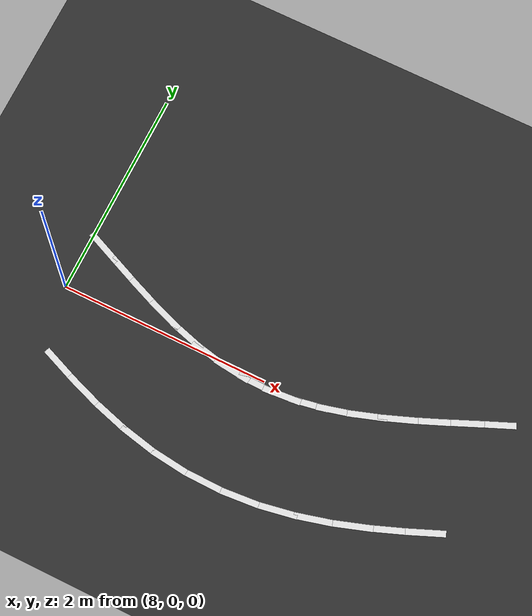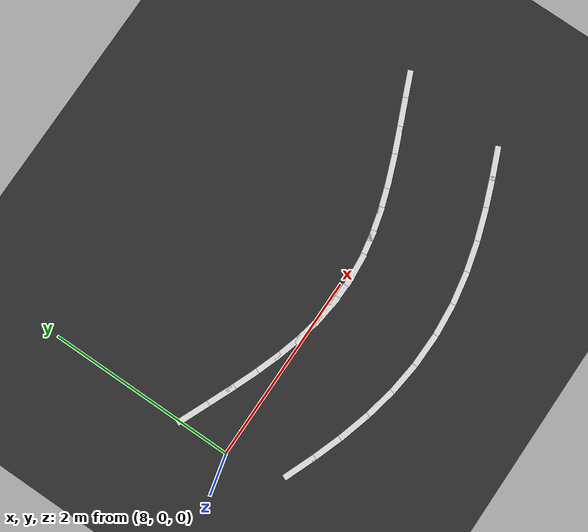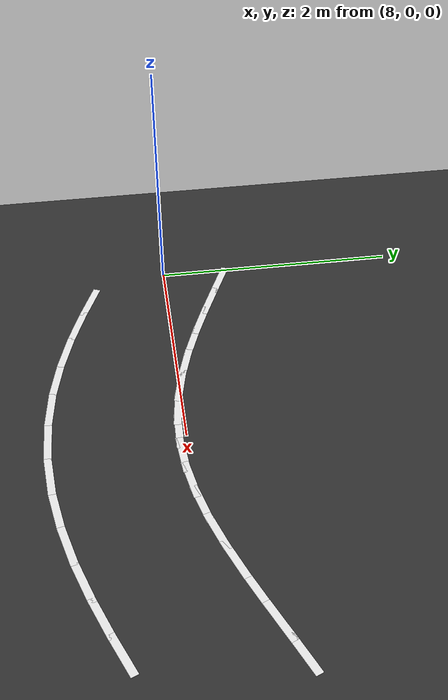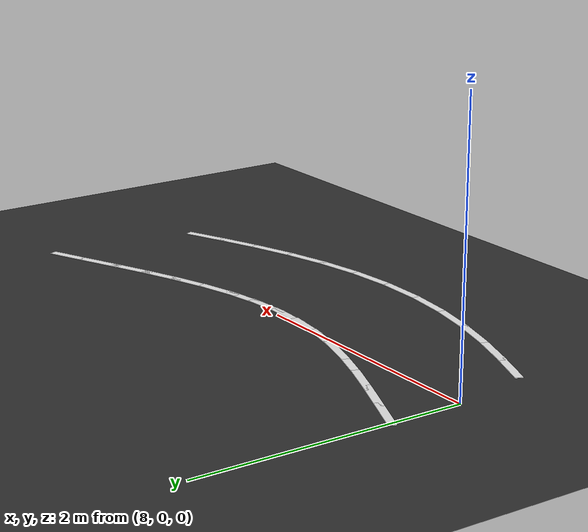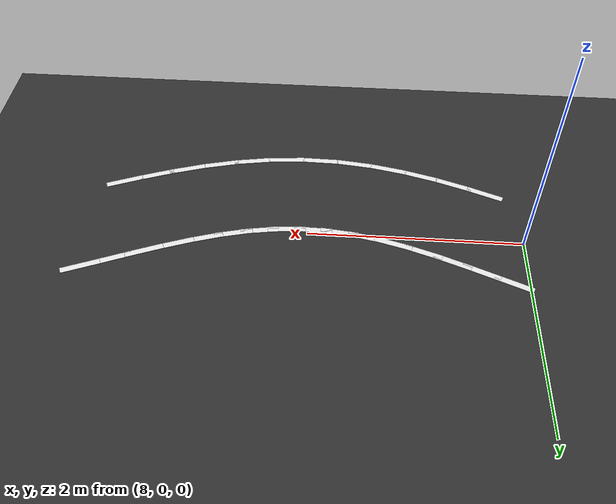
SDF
<sdf version="1.7">
 <world name="cone_lane">
  <model name="ground_plane">
   <static>true</static>
   <link name="link">
    <collision name="collision">
     <geometry><plane><normal>0 0 1</normal><size>150 150</size></plane></geometry>
     <surface><friction><ode><mu>1.0</mu></ode></friction></surface>
    </collision>
    <visual name="visual">
     <geometry><plane><normal>0 0 1</normal><size>100 100</size></plane></geometry>
     <material>
      <ambient>0.16 0.16 0.16 1</ambient>
      <diffuse>0.20 0.20 0.20 1</diffuse>
      <specular>0.02 0.02 0.02 1</specular>
     </material>
    </visual>
   </link>
  </model>
  <model name="line_L028">
   <static>true</static>
   <pose>8.138 0.485 0.0030 0 0 -0.4073</pose>
   <link name="link">
    <visual name="v">
     <geometry><box><size>0.360 0.060 0.005</size></box></geometry>
     <material>
      <ambient>0.85 0.85 0.85 1</ambient>
      <diffuse>0.95 0.95 0.95 1</diffuse>
      <specular>0.1 0.1 0.1 1</specular>
     </material>
    </visual>
   </link>
  </model>
  <model name="line_L029">
   <static>true</static>
   <pose>8.416 0.366 0.0030 0 0 -0.4023</pose>
   <link name="link">
    <visual name="v">
     <geometry><box><size>0.360 0.060 0.005</size></box></geometry>
     <material>
      <ambient>0.85 0.85 0.85 1</ambient>
      <diffuse>0.95 0.95 0.95 1</diffuse>
      <specular>0.1 0.1 0.1 1</specular>
     </material>
    </visual>
   </link>
  </model>
  <model name="line_L030">
   <static>true</static>
   <pose>8.666 0.262 0.0030 0 0 -0.3819</pose>
   <link name="link">
    <visual name="v">
     <geometry><box><size>0.360 0.060 0.005</size></box></geometry>
     <material>
      <ambient>0.85 0.85 0.85 1</ambient>
      <diffuse>0.95 0.95 0.95 1</diffuse>
      <specular>0.1 0.1 0.1 1</specular>
     </material>
    </visual>
   </link>
  </model>
  <model name="line_L031">
   <static>true</static>
   <pose>8.928 0.162 0.0030 0 0 -0.3431</pose>
   <link name="link">
    <visual name="v">
     <geometry><box><size>0.360 0.060 0.005</size></box></geometry>
     <material>
      <ambient>0.85 0.85 0.85 1</ambient>
      <diffuse>0.95 0.95 0.95 1</diffuse>
      <specular>0.1 0.1 0.1 1</specular>
     </material>
    </visual>
   </link>
  </model>
  <model name="line_L032">
   <static>true</static>
   <pose>9.200 0.073 0.0030 0 0 -0.2829</pose>
   <link name="link">
    <visual name="v">
     <geometry><box><size>0.360 0.060 0.005</size></box></geometry>
     <material>
      <ambient>0.85 0.85 0.85 1</ambient>
      <diffuse>0.95 0.95 0.95 1</diffuse>
      <specular>0.1 0.1 0.1 1</specular>
     </material>
    </visual>
   </link>
  </model>
  <model name="line_L033">
   <static>true</static>
   <pose>9.445 0.011 0.0030 0 0 -0.2108</pose>
   <link name="link">
    <visual name="v">
     <geometry><box><size>0.360 0.060 0.005</size></box></geometry>
     <material>
      <ambient>0.85 0.85 0.85 1</ambient>
      <diffuse>0.95 0.95 0.95 1</diffuse>
      <specular>0.1 0.1 0.1 1</specular>
     </material>
    </visual>
   </link>
  </model>
  <model name="line_L034">
   <static>true</static>
   <pose>9.700 -0.032 0.0030 0 0 -0.1199</pose>
   <link name="link">
    <visual name="v">
     <geometry><box><size>0.360 0.060 0.005</size></box></geometry>
     <material>
      <ambient>0.85 0.85 0.85 1</ambient>
      <diffuse>0.95 0.95 0.95 1</diffuse>
      <specular>0.1 0.1 0.1 1</specular>
     </material>
    </visual>
   </link>
  </model>
  <model name="line_L035">
   <static>true</static>
   <pose>9.950 -0.049 0.0030 0 0 -0.0203</pose>
   <link name="link">
    <visual name="v">
     <geometry><box><size>0.360 0.060 0.005</size></box></geometry>
     <material>
      <ambient>0.85 0.85 0.85 1</ambient>
      <diffuse>0.95 0.95 0.95 1</diffuse>
      <specular>0.1 0.1 0.1 1</specular>
     </material>
    </visual>
   </link>
  </model>
  <model name="line_L036">
   <static>true</static>
   <pose>10.200 -0.042 0.0030 0 0 0.0808</pose>
   <link name="link">
    <visual name="v">
     <geometry><box><size>0.360 0.060 0.005</size></box></geometry>
     <material>
      <ambient>0.85 0.85 0.85 1</ambient>
      <diffuse>0.95 0.95 0.95 1</diffuse>
      <specular>0.1 0.1 0.1 1</specular>
     </material>
    </visual>
   </link>
  </model>
  <model name="line_L037">
   <static>true</static>
   <pose>10.452 -0.009 0.0030 0 0 0.1759</pose>
   <link name="link">
    <visual name="v">
     <geometry><box><size>0.360 0.060 0.005</size></box></geometry>
     <material>
      <ambient>0.85 0.85 0.85 1</ambient>
      <diffuse>0.95 0.95 0.95 1</diffuse>
      <specular>0.1 0.1 0.1 1</specular>
     </material>
    </visual>
   </link>
  </model>
  <model name="line_L038">
   <static>true</static>
   <pose>10.694 0.044 0.0030 0 0 0.2538</pose>
   <link name="link">
    <visual name="v">
     <geometry><box><size>0.360 0.060 0.005</size></box></geometry>
     <material>
      <ambient>0.85 0.85 0.85 1</ambient>
      <diffuse>0.95 0.95 0.95 1</diffuse>
      <specular>0.1 0.1 0.1 1</specular>
     </material>
    </visual>
   </link>
  </model>
  <model name="line_L039">
   <static>true</static>
   <pose>10.962 0.124 0.0030 0 0 0.3213</pose>
   <link name="link">
    <visual name="v">
     <geometry><box><size>0.360 0.060 0.005</size></box></geometry>
     <material>
      <ambient>0.85 0.85 0.85 1</ambient>
      <diffuse>0.95 0.95 0.95 1</diffuse>
      <specular>0.1 0.1 0.1 1</specular>
     </material>
    </visual>
   </link>
  </model>
  <model name="line_L040">
   <static>true</static>
   <pose>11.220 0.217 0.0030 0 0 0.3674</pose>
   <link name="link">
    <visual name="v">
     <geometry><box><size>0.360 0.060 0.005</size></box></geometry>
     <material>
      <ambient>0.85 0.85 0.85 1</ambient>
      <diffuse>0.95 0.95 0.95 1</diffuse>
      <specular>0.1 0.1 0.1 1</specular>
     </material>
    </visual>
   </link>
  </model>
  <model name="line_L041">
   <static>true</static>
   <pose>11.487 0.324 0.0030 0 0 0.3963</pose>
   <link name="link">
    <visual name="v">
     <geometry><box><size>0.360 0.060 0.005</size></box></geometry>
     <material>
      <ambient>0.85 0.85 0.85 1</ambient>
      <diffuse>0.95 0.95 0.95 1</diffuse>
      <specular>0.1 0.1 0.1 1</specular>
     </material>
    </visual>
   </link>
  </model>
  <model name="line_L042">
   <static>true</static>
   <pose>11.762 0.442 0.0030 0 0 0.4076</pose>
   <link name="link">
    <visual name="v">
     <geometry><box><size>0.360 0.060 0.005</size></box></geometry>
     <material>
      <ambient>0.85 0.85 0.85 1</ambient>
      <diffuse>0.95 0.95 0.95 1</diffuse>
      <specular>0.1 0.1 0.1 1</specular>
     </material>
    </visual>
   </link>
  </model>
  <model name="line_L043">
   <static>true</static>
   <pose>12.024 0.555 0.0030 0 0 0.4023</pose>
   <link name="link">
    <visual name="v">
     <geometry><box><size>0.360 0.060 0.005</size></box></geometry>
     <material>
      <ambient>0.85 0.85 0.85 1</ambient>
      <diffuse>0.95 0.95 0.95 1</diffuse>
      <specular>0.1 0.1 0.1 1</specular>
     </material>
    </visual>
   </link>
  </model>
  <model name="line_R030">
   <static>true</static>
   <pose>8.294 -0.666 0.0030 0 0 -0.3819</pose>
   <link name="link">
    <visual name="v">
     <geometry><box><size>0.360 0.060 0.005</size></box></geometry>
     <material>
      <ambient>0.85 0.85 0.85 1</ambient>
      <diffuse>0.95 0.95 0.95 1</diffuse>
      <specular>0.1 0.1 0.1 1</specular>
     </material>
    </visual>
   </link>
  </model>
  <model name="line_R031">
   <static>true</static>
   <pose>8.592 -0.780 0.0030 0 0 -0.3431</pose>
   <link name="link">
    <visual name="v">
     <geometry><box><size>0.360 0.060 0.005</size></box></geometry>
     <material>
      <ambient>0.85 0.85 0.85 1</ambient>
      <diffuse>0.95 0.95 0.95 1</diffuse>
      <specular>0.1 0.1 0.1 1</specular>
     </material>
    </visual>
   </link>
  </model>
  <model name="line_R032">
   <static>true</static>
   <pose>8.920 -0.887 0.0030 0 0 -0.2829</pose>
   <link name="link">
    <visual name="v">
     <geometry><box><size>0.360 0.060 0.005</size></box></geometry>
     <material>
      <ambient>0.85 0.85 0.85 1</ambient>
      <diffuse>0.95 0.95 0.95 1</diffuse>
      <specular>0.1 0.1 0.1 1</specular>
     </material>
    </visual>
   </link>
  </model>
  <model name="line_R033">
   <static>true</static>
   <pose>9.235 -0.967 0.0030 0 0 -0.2108</pose>
   <link name="link">
    <visual name="v">
     <geometry><box><size>0.360 0.060 0.005</size></box></geometry>
     <material>
      <ambient>0.85 0.85 0.85 1</ambient>
      <diffuse>0.95 0.95 0.95 1</diffuse>
      <specular>0.1 0.1 0.1 1</specular>
     </material>
    </visual>
   </link>
  </model>
  <model name="line_R034">
   <static>true</static>
   <pose>9.580 -1.025 0.0030 0 0 -0.1199</pose>
   <link name="link">
    <visual name="v">
     <geometry><box><size>0.360 0.060 0.005</size></box></geometry>
     <material>
      <ambient>0.85 0.85 0.85 1</ambient>
      <diffuse>0.95 0.95 0.95 1</diffuse>
      <specular>0.1 0.1 0.1 1</specular>
     </material>
    </visual>
   </link>
  </model>
  <model name="line_R035">
   <static>true</static>
   <pose>9.930 -1.049 0.0030 0 0 -0.0203</pose>
   <link name="link">
    <visual name="v">
     <geometry><box><size>0.360 0.060 0.005</size></box></geometry>
     <material>
      <ambient>0.85 0.85 0.85 1</ambient>
      <diffuse>0.95 0.95 0.95 1</diffuse>
      <specular>0.1 0.1 0.1 1</specular>
     </material>
    </visual>
   </link>
  </model>
  <model name="line_R036">
   <static>true</static>
   <pose>10.280 -1.039 0.0030 0 0 0.0808</pose>
   <link name="link">
    <visual name="v">
     <geometry><box><size>0.360 0.060 0.005</size></box></geometry>
     <material>
      <ambient>0.85 0.85 0.85 1</ambient>
      <diffuse>0.95 0.95 0.95 1</diffuse>
      <specular>0.1 0.1 0.1 1</specular>
     </material>
    </visual>
   </link>
  </model>
  <model name="line_R037">
   <static>true</static>
   <pose>10.628 -0.994 0.0030 0 0 0.1759</pose>
   <link name="link">
    <visual name="v">
     <geometry><box><size>0.360 0.060 0.005</size></box></geometry>
     <material>
      <ambient>0.85 0.85 0.85 1</ambient>
      <diffuse>0.95 0.95 0.95 1</diffuse>
      <specular>0.1 0.1 0.1 1</specular>
     </material>
    </visual>
   </link>
  </model>
  <model name="line_R038">
   <static>true</static>
   <pose>10.946 -0.924 0.0030 0 0 0.2538</pose>
   <link name="link">
    <visual name="v">
     <geometry><box><size>0.360 0.060 0.005</size></box></geometry>
     <material>
      <ambient>0.85 0.85 0.85 1</ambient>
      <diffuse>0.95 0.95 0.95 1</diffuse>
      <specular>0.1 0.1 0.1 1</specular>
     </material>
    </visual>
   </link>
  </model>
  <model name="line_R039">
   <static>true</static>
   <pose>11.278 -0.825 0.0030 0 0 0.3213</pose>
   <link name="link">
    <visual name="v">
     <geometry><box><size>0.360 0.060 0.005</size></box></geometry>
     <material>
      <ambient>0.85 0.85 0.85 1</ambient>
      <diffuse>0.95 0.95 0.95 1</diffuse>
      <specular>0.1 0.1 0.1 1</specular>
     </material>
    </visual>
   </link>
  </model>
  <model name="line_R040">
   <static>true</static>
   <pose>11.580 -0.716 0.0030 0 0 0.3674</pose>
   <link name="link">
    <visual name="v">
     <geometry><box><size>0.360 0.060 0.005</size></box></geometry>
     <material>
      <ambient>0.85 0.85 0.85 1</ambient>
      <diffuse>0.95 0.95 0.95 1</diffuse>
      <specular>0.1 0.1 0.1 1</specular>
     </material>
    </visual>
   </link>
  </model>
  <model name="line_R041">
   <static>true</static>
   <pose>11.873 -0.598 0.0030 0 0 0.3963</pose>
   <link name="link">
    <visual name="v">
     <geometry><box><size>0.360 0.060 0.005</size></box></geometry>
     <material>
      <ambient>0.85 0.85 0.85 1</ambient>
      <diffuse>0.95 0.95 0.95 1</diffuse>
      <specular>0.1 0.1 0.1 1</specular>
     </material>
    </visual>
   </link>
  </model>
 </world>
</sdf>
